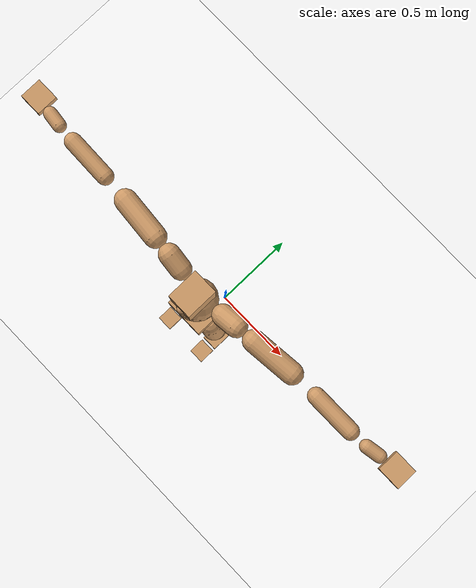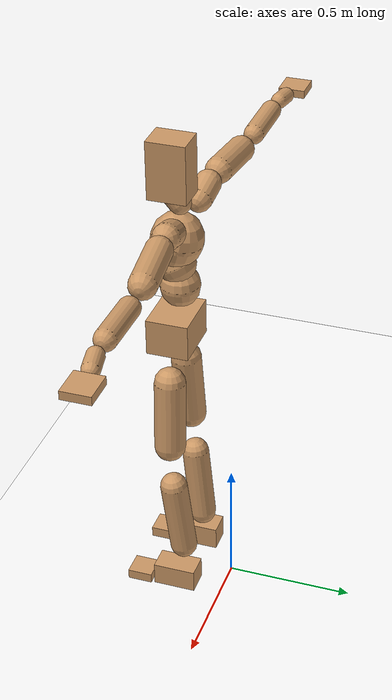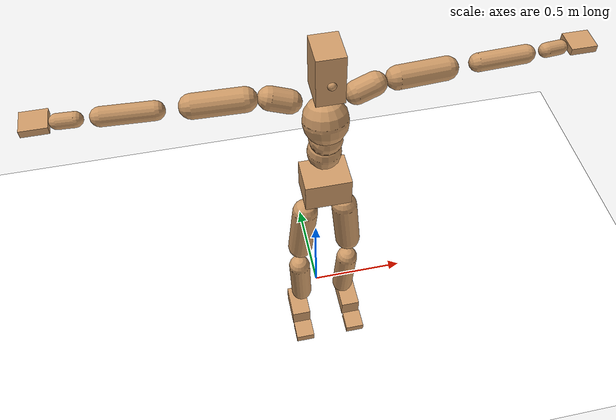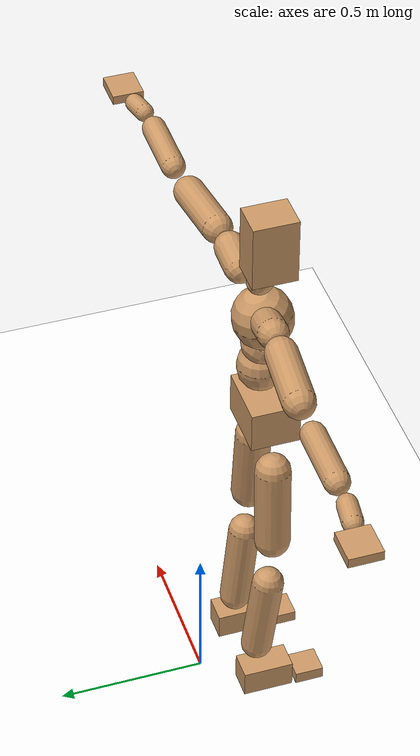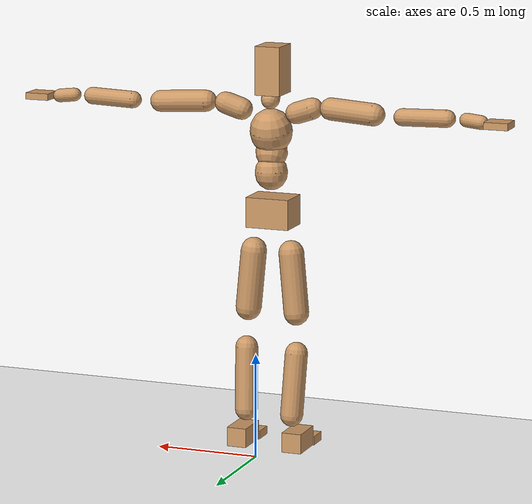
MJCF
<mujoco model="humanoid">
  <option integrator="implicitfast" />

  <visual>
    <global offwidth="1280" offheight="960" />
    <headlight active="1" ambient="0.34 0.34 0.34" diffuse="0.5 0.5 0.5" />
  </visual>

  <default>
    <joint damping="2" stiffness="2" armature="0.01" limited="true" solimplimit="0 .99 .01" />
    <geom condim="1" friction="0.7 0.005 0.0001" solimp=".99 .99 .003" solref="0.015 1" margin="0.001" rgba="0.8 0.6 .4 1" />
    <default class="smplcontact">
      <geom condim="3" friction="1. 0.005 0.0001" solref="0.015 1" solimp="0.98 0.98 0.001" priority="1" />
    </default>
    <default class="stiff_medium">
      <joint stiffness="10" />
    </default>
    <default class="stiff_medium_higher">
      <joint stiffness="50" />
    </default>
    <default class="stiff_high">
      <joint stiffness="100" />
    </default>
  </default>

  <asset>
    <texture type="skybox" builtin="gradient" rgb1="0.99 0.99 0.99" rgb2="0.608 0.828 0.892" width="100" />
    <texture builtin="flat" height="1278" mark="cross" markrgb="1 1 1" name="texgeom" random="0.01" rgb1="0.8 0.6 0.4" rgb2="0.8 0.6 0.4" type="cube" width="127" />
    <texture name="texplane" type="2d" builtin="checker" markrgb="1 1 1" rgb1="0.756 0.772 0.76" rgb2="0.6 0.6 0.6" width="100" height="100" />
    <material name="MatPlane" reflectance="0.5" texture="texplane" texrepeat="1 1" texuniform="true" />
    <material name="geom" texture="texgeom" texuniform="true" />
  </asset>

  <worldbody>
    <light name="tracking_light" pos="0 0 7" dir="0 0 -1" directional="true" cutoff="100" exponent="1" diffuse="1 1 1" specular="0.1 0.1 0.1" mode="trackcom" />
    <camera name="back" pos="0 3 2.4" xyaxes="-1 0 0 0 -1 2" mode="trackcom" />
    <camera name="side" pos="-3 0 2.4" xyaxes="0 -1 0 1 0 2" mode="trackcom" />
    <camera name="front_side" pos="-2.8 -2.8 0.8" xyaxes="0.5 -0.5 0 0.1 0.1 1" mode="trackcom" />
    <geom condim="3" name="floor" pos="0 0 0" rgba="1 1 1 1" size="100 100 .2" type="plane" material="MatPlane" />
    <body name="Pelvis" pos="-0.0018 -0.2233 1.16548" euler="90 0 0">
      <site name="Pelvis" size="0.01" />
      <freejoint name="Pelvis" />
      <geom type="box" pos="-0.0000 -0.0121 -0.0055" size="0.1069 0.0722 0.083" quat="1.0000 0.0000 0.0000 0.0000" density="3165.830099" name="Pelvis" />
      <body name="L_Hip" pos="0.086875 -0.11425 -0.0085">
        <joint name="L_Hip_x" type="hinge" pos="0 0 0" axis="1 0 0" stiffness="14.589841836734694" range="-160.0 22.92" class="stiff_medium" damping="24.10689143795971" armature="0.017703099984975993"/>
        <joint name="L_Hip_y" type="hinge" pos="0 0 0" axis="0 1 0" stiffness="14.527612551020406" range="-70.0 70.0" class="stiff_medium" damping="14.262213477061751" armature="0.014001662871370732"/>
        <joint name="L_Hip_z" type="hinge" pos="0 0 0" axis="0 0 1" stiffness="14.532940204081633" range="-28.65 90.0" class="stiff_medium" damping="16.042326803653772" armature="0.01770847782081624"/>
        <geom type="capsule" density="2040.816327" fromto="0.008625 -0.09375 -0.001125 0.03425 -0.37525 -0.0045" size="0.0615" name="L_Hip" />
        <body name="L_Knee" pos="0.042875 -0.469 -0.005625">
          <joint name="L_Knee_x" type="hinge" pos="0 0 0" axis="1 0 0" range="-5.16 171.89" damping="12.427866473289072" armature="0.0169556873934187" stiffness="2.8466087346938775"/>
          <joint name="L_Knee_y" type="hinge" pos="0 0 0" axis="0 1 0" range="-4.58 6.88" damping="11.131948599716761" armature="0.013404538190087165" stiffness="2.888953489795919"/>
          <joint name="L_Knee_z" type="hinge" pos="0 0 0" axis="0 0 1" range="-6.88 4.58" damping="12.396032357314184" armature="0.016980355499687908" stiffness="2.8279299387755104"/>
          <geom type="capsule" density="1234.567901" fromto="-0.003375 -0.0995 -0.010875 -0.013625 -0.398 -0.04375" size="0.0541" name="L_Knee" />
          <body name="L_Ankle" pos="-0.017 -0.4975 -0.054625">
            <joint name="L_Ankle_x" type="hinge" pos="0 0 0" axis="1 0 0" range="-45.84 45.84" class="stiff_medium" damping="7.851672460897979" armature="0.013699724540716383" stiffness="12.5"/>
            <joint name="L_Ankle_y" type="hinge" pos="0 0 0" axis="0 1 0" range="-74.48 22.92" class="stiff_medium" damping="3.9060654718054306" armature="0.013562086640027183" stiffness="12.5"/>
            <joint name="L_Ankle_z" type="hinge" pos="0 0 0" axis="0 0 1" range="-4.58 4.58" class="stiff_medium" damping="7.548153538649268" armature="0.012661027076227436" stiffness="12.5"/>
            <geom type="box" pos="0.029125 -0.029875 0.03025" size="0.0483 0.0464 0.085" quat="1.0000 0.0000 0.0000 0.0000" density="449.071558" name="L_Ankle" class="smplcontact" />
            <body name="L_Toe" pos="0.033 -0.06975 0.149125">
              <joint name="L_Toe_x" type="hinge" pos="0 0 0" axis="1 0 0" range="-91.67 22.92" armature="0.01213855700177998" damping="2.4635905708721144" stiffness="2.5"/>
              <joint name="L_Toe_y" type="hinge" pos="0 0 0" axis="0 1 0" range="-4.58 4.58" armature="0.011506786054687943" damping="2.398623152423901" stiffness="2.5"/>
              <joint name="L_Toe_z" type="hinge" pos="0 0 0" axis="0 0 1" range="-4.58 4.58" armature="0.01022937920457749" damping="2.261567952171401" stiffness="2.5"/>
              <geom type="box" pos="-0.00375 0.006875 0.031" size="0.0478 0.02 0.0496" quat="1.0000 0.0000 0.0000 0.0000" density="423.206892" name="L_Toe" class="smplcontact" />
            </body>
          </body>
        </body>
      </body>
      <body name="R_Hip" pos="-0.084625 -0.113125 -0.005375">
        <joint name="R_Hip_x" type="hinge" pos="0 0 0" axis="1 0 0" stiffness="14.589841836734694" range="-160.0 22.92" class="stiff_medium" damping="24.10689143795971" armature="0.017703099984975993"/>
        <joint name="R_Hip_y" type="hinge" pos="0 0 0" axis="0 1 0" stiffness="14.527612551020406" range="-70.0 70.0" class="stiff_medium" damping="14.262213477061751" armature="0.014001662871370732"/>
        <joint name="R_Hip_z" type="hinge" pos="0 0 0" axis="0 0 1" stiffness="14.532940204081633" range="-90.0 28.65" class="stiff_medium" damping="16.042326803653772" armature="0.01770847782081624"/>
        <geom type="capsule" density="2040.816327" fromto="-0.009625 -0.095625 -0.00225 -0.03825 -0.382625 -0.008875" size="0.0606" name="R_Hip" />
        <body name="R_Knee" pos="-0.047875 -0.47825 -0.011125">
          <joint name="R_Knee_x" type="hinge" pos="0 0 0" axis="1 0 0" range="-5.16 171.89" damping="12.427866473289072" armature="0.0169556873934187" stiffness="2.8466087346938775"/>
          <joint name="R_Knee_y" type="hinge" pos="0 0 0" axis="0 1 0" range="-6.88 4.58" damping="11.131948599716761" armature="0.013404538190087165" stiffness="2.888953489795919"/>
          <joint name="R_Knee_z" type="hinge" pos="0 0 0" axis="0 0 1" range="-4.58 6.88" damping="12.396032357314184" armature="0.016980355499687908" stiffness="2.8279299387755104"/>
          <geom type="capsule" density="1234.567901" fromto="0.004 -0.099625 -0.010625 0.01575 -0.398375 -0.04225" size="0.0541" name="R_Knee" />
          <body name="R_Ankle" pos="0.01975 -0.498 -0.052875">
            <joint name="R_Ankle_x" type="hinge" pos="0 0 0" axis="1 0 0" range="-45.84 45.84" class="stiff_medium" damping="7.851672460897979" armature="0.013699724540716383" stiffness="12.5"/>
            <joint name="R_Ankle_y" type="hinge" pos="0 0 0" axis="0 1 0" range="-22.92 74.48" class="stiff_medium" damping="3.9060654718054306" armature="0.013562086640027183" stiffness="12.5"/>
            <joint name="R_Ankle_z" type="hinge" pos="0 0 0" axis="0 0 1" range="-4.58 4.58" class="stiff_medium" damping="7.548153538649268" armature="0.012661027076227436" stiffness="12.5"/>
            <geom type="box" pos="-0.0265 -0.02175 0.032" size="0.0483 0.0478 0.0865" quat="1.0000 0.0000 0.0000 0.0000" density="434.700981" name="R_Ankle" class="smplcontact" />
            <body name="R_Toe" pos="-0.03175 -0.060125 0.154125">
              <joint name="R_Toe_x" type="hinge" pos="0 0 0" axis="1 0 0" range="-91.67 22.92" armature="0.01213855700177998" damping="2.4635905708721144" stiffness="2.5"/>
              <joint name="R_Toe_y" type="hinge" pos="0 0 0" axis="0 1 0" range="-4.58 4.58" armature="0.011506786054687943" damping="2.398623152423901" stiffness="2.5"/>
              <joint name="R_Toe_z" type="hinge" pos="0 0 0" axis="0 0 1" range="-4.58 4.58" armature="0.01022937920457749" damping="2.261567952171401" stiffness="2.5"/>
              <geom type="box" pos="0.00525 0.005625 0.028375" size="0.0479 0.0216 0.0493" quat="1.0000 0.0000 0.0000 0.0000" density="407.384095" name="R_Toe" class="smplcontact" />
            </body>
          </body>
        </body>
      </body>
      <body name="Torso" pos="-0.0025 0.109 -0.0267">
        <joint name="Torso_x" type="hinge" pos="0 0 0" axis="1 0 0" range="-25.78 57.3" class="stiff_medium" damping="17.816617842535408" armature="0.012204442824088023" stiffness="11.55979291666667"/>
        <joint name="Torso_y" type="hinge" pos="0 0 0" axis="0 1 0" range="-57.3 57.3" class="stiff_high" damping="32.66648617457636" armature="0.023482633249027433" stiffness="113.6051595744681"/>
        <joint name="Torso_z" type="hinge" pos="0 0 0" axis="0 0 1" range="-34.38 34.38" class="stiff_high" damping="26.532055594632826" armature="0.016035100718302126" stiffness="109.75141136363638"/>
        <geom type="capsule" density="2040.816327" fromto="0.0025 0.0608 0.0005 0.003 0.0743 0.0006" size="0.0769" name="Torso" />
        <body name="Spine" pos="0.0055 0.1352 0.0011">
          <joint name="Spine_x" type="hinge" pos="0 0 0" axis="1 0 0" stiffness="11.652306458333332" range="-25.78 57.3" class="stiff_medium" damping="18.3468499559195" armature="0.0128389232355432"/>
          <joint name="Spine_y" type="hinge" pos="0 0 0" axis="0 1 0" stiffness="12.490174523809525" range="-57.3 57.3" class="stiff_high" damping="13.727844217436889" armature="0.02357524439747789"/>
          <joint name="Spine_z" type="hinge" pos="0 0 0" axis="0 0 1" stiffness="24.140002666666668" range="-34.38 34.38" class="stiff_high" damping="18.060617405335822" armature="0.018767022520783622"/>
          <geom type="capsule" density="2040.816327" fromto="0.0007 0.0238 0.0114 0.0008 0.0291 0.014" size="0.0755" name="Spine" />
          <body name="Chest" pos="0.0015 0.0529 0.0254">
            <joint name="Chest_x" type="hinge" pos="0 0 0" axis="1 0 0" stiffness="12.52777088888889" range="-25.78 57.3" class="stiff_medium" damping="19.3234206846418" armature="0.013246821899117765"/>
            <joint name="Chest_y" type="hinge" pos="0 0 0" axis="0 1 0" stiffness="14.856075609756099" range="-57.3 57.3" class="stiff_high" damping="14.973397185345428" armature="0.023580695741040242"/>
            <joint name="Chest_z" type="hinge" pos="0 0 0" axis="0 0 1" stiffness="24.504841860465113" range="-34.38 34.38" class="stiff_high" damping="18.77641315249792" armature="0.01998208789833815"/>
            <geom type="capsule" density="2040.816327" fromto="-0.0009 0.0682 -0.0173 -0.001 0.0833 -0.0212" size="0.1002" name="Chest" />
            <body name="Neck" pos="-0.0028 0.2139 -0.0429">
              <joint name="Neck_x" type="hinge" pos="0 0 0" axis="1 0 0" range="-28.65 57.3" class="stiff_medium_higher" damping="9.999999999999996" armature="0.009999999999999993" stiffness="50.0"/>
              <joint name="Neck_y" type="hinge" pos="0 0 0" axis="0 1 0" range="-40.11 40.11" class="stiff_medium_higher" damping="10.0" armature="0.01" stiffness="50.0"/>
              <joint name="Neck_z" type="hinge" pos="0 0 0" axis="0 0 1" range="-40.11 40.11" class="stiff_medium_higher" damping="9.999999999999996" armature="0.009999999999999992" stiffness="50.0"/>
              <geom type="capsule" density="1000" fromto="0.001 0.013 0.0103 0.0041 0.052 0.0411" size="0.0436" name="Neck" />
              <body name="Head" pos="0.0052 0.065 0.0513">
                <joint name="Head_x" type="hinge" pos="0 0 0" axis="1 0 0" range="-28.65 57.3" class="stiff_medium_higher" damping="1.9999999999999931" armature="0.009999999999999933" stiffness="50.0"/>
                <joint name="Head_y" type="hinge" pos="0 0 0" axis="0 1 0" range="-40.11 40.11" class="stiff_medium_higher" damping="1.9999999999999998" armature="0.009999999999999998" stiffness="50.0"/>
                <joint name="Head_z" type="hinge" pos="0 0 0" axis="0 0 1" range="-40.11 40.11" class="stiff_medium_higher" damping="1.9999999999999964" armature="0.009999999999999966" stiffness="50.0"/>
                <geom type="box" pos="-0.0042 0.0876 -0.0116" size="0.0606 0.1154 0.076" quat="1.0000 0.0000 0.0000 0.0000" density="1018.069894" name="Head" />
                <geom type="capsule" name="nose" size="0.02 0.01" pos="0 0.07 0.05" quat="1 0 0 0" mass="0" contype="0" conaffinity="0" />
              </body>
            </body>
            <body name="L_Thorax" pos="0.11032 0.17038 -0.04774">
              <joint name="L_Thorax_x" type="hinge" pos="0 0 0" axis="1 0 0" range="-10.89 4.58" class="stiff_medium_higher" damping="36.24085805879014" armature="0.018856138634744554" stiffness="87.06712295918368"/>
              <joint name="L_Thorax_y" type="hinge" pos="0 0 0" axis="0 1 0" range="-28.65 17.19" class="stiff_medium_higher" damping="40.96620891880994" armature="0.023898132129905852" stiffness="87.78041020408163"/>
              <joint name="L_Thorax_z" type="hinge" pos="0 0 0" axis="0 0 1" range="-31.51 40.11" class="stiff_medium_higher" damping="40.96835729355361" armature="0.023902786052476355" stiffness="87.77252448979593"/>
              <geom type="capsule" density="1000" fromto="0.02548 0.00854 -0.00252 0.10192 0.03416 -0.00994" size="0.0521" name="L_Thorax" />
              <body name="L_Shoulder" pos="0.1274 0.0427 -0.01246">
                <joint name="L_Shoulder_x" type="hinge" pos="0 0 0" axis="1 0 0" range="-97.4 97.4" class="stiff_medium" damping="10.216467793124725" armature="0.016750975720821175" stiffness="17.30848"/>
                <joint name="L_Shoulder_y" type="hinge" pos="0 0 0" axis="0 1 0" range="-108.86 80.21" class="stiff_medium" damping="12.210584630805666" armature="0.023662310849895674" stiffness="17.503030918367347"/>
                <joint name="L_Shoulder_z" type="hinge" pos="0 0 0" axis="0 0 1" range="-97.4 85.94" class="stiff_medium" damping="12.207996623471665" armature="0.02366780094775564" stiffness="17.491553877551024"/>
                <geom type="capsule" density="1000" fromto="0.07266 -0.00364 -0.0077 0.29078 -0.01428 -0.0308" size="0.0517" name="L_Shoulder" />
                <body name="L_Elbow" pos="0.36344 -0.01792 -0.0385">
                  <joint name="L_Elbow_x" type="hinge" pos="0 0 0" axis="1 0 0" range="-17.19 4.58" damping="7.586581525572711" armature="0.01362034881744679" stiffness="3.380601775510204"/>
                  <joint name="L_Elbow_y" type="hinge" pos="0 0 0" axis="0 1 0" range="-180.0 17.19" damping="9.75867105261812" armature="0.022523674987219206" stiffness="3.382455510204082"/>
                  <joint name="L_Elbow_z" type="hinge" pos="0 0 0" axis="0 0 1" range="-100.84 4.58" damping="9.76033597904074" armature="0.022552387617329545" stiffness="3.3793019183673465"/>
                  <geom type="capsule" density="1000" fromto="0.06972 0.00252 -0.00028 0.27916 0.01008 -0.00126" size="0.0405" name="L_Elbow" />
                  <body name="L_Wrist" pos="0.34888 0.0126 -0.00168">
                    <joint name="L_Wrist_x" type="hinge" pos="0 0 0" axis="1 0 0" range="-180.0 22.92" armature="0.013168550139583885" damping="2.8121939405269574" stiffness="3.002773530612245"/>
                    <joint name="L_Wrist_y" type="hinge" pos="0 0 0" axis="0 1 0" range="-17.19 17.19" armature="0.019145926143816158" damping="3.4076565933193814" stiffness="3.0325311428571426"/>
                    <joint name="L_Wrist_z" type="hinge" pos="0 0 0" axis="0 0 1" range="-22.92 22.92" armature="0.01946864082917072" damping="3.4294485001747024" stiffness="3.0205285306122445"/>
                    <geom type="capsule" density="1000" fromto="0.02352 -0.00224 -0.0042 0.09408 -0.0091 -0.0168" size="0.0318" name="L_Wrist" class="smplcontact" />
                    <body name="L_Hand" pos="0.1176 -0.01148 -0.02086">
                      <joint name="L_Hand_x" type="hinge" pos="0 0 0" axis="1 0 0" range="-17.19 17.19" armature="0.010418235140997148" damping="2.415411285673395" stiffness="2.8000000000000003"/>
                      <joint name="L_Hand_y" type="hinge" pos="0 0 0" axis="0 1 0" range="-51.57 51.57" armature="0.015057977012994713" damping="2.9038710589964287" stiffness="2.8000000000000003"/>
                      <joint name="L_Hand_z" type="hinge" pos="0 0 0" axis="0 0 1" range="-91.67 91.67" armature="0.016294763602145573" damping="3.0207726854567394" stiffness="2.8000000000000003"/>
                      <geom type="box" pos="0.06902 0.0014 -0.00812" size="0.0585 0.0158 0.0538" quat="1.0000 0.0000 0.0000 0.0000" density="400.552564" name="L_Hand" class="smplcontact" />
                    </body>
                  </body>
                </body>
              </body>
            </body>
            <body name="R_Thorax" pos="-0.11452 0.16632 -0.05404">
              <joint name="R_Thorax_x" type="hinge" pos="0 0 0" axis="1 0 0" range="-10.89 4.58" class="stiff_medium_higher" damping="36.24085805879014" armature="0.018856138634744554" stiffness="87.06712295918368"/>
              <joint name="R_Thorax_y" type="hinge" pos="0 0 0" axis="0 1 0" range="-17.19 28.65" class="stiff_medium_higher" damping="40.96620891880994" armature="0.023898132129905852" stiffness="87.78041020408163"/>
              <joint name="R_Thorax_z" type="hinge" pos="0 0 0" axis="0 0 1" range="-40.11 31.51" class="stiff_medium_higher" damping="40.96835729355361" armature="0.023902786052476355" stiffness="87.77252448979593"/>
              <geom type="capsule" density="1000" fromto="-0.02688 0.0091 -0.00252 -0.10752 0.0364 -0.01022" size="0.0511" name="R_Thorax" />
              <body name="R_Shoulder" pos="-0.1344 0.04564 -0.01274">
                <joint name="R_Shoulder_x" type="hinge" pos="0 0 0" axis="1 0 0" range="-97.4 97.4" class="stiff_medium" damping="10.216467793124725" armature="0.016750975720821175" stiffness="17.30848"/>
                <joint name="R_Shoulder_y" type="hinge" pos="0 0 0" axis="0 1 0" range="-80.21 108.86" class="stiff_medium" damping="12.210584630805666" armature="0.023662310849895674" stiffness="17.503030918367347"/>
                <joint name="R_Shoulder_z" type="hinge" pos="0 0 0" axis="0 0 1" range="-85.94 97.4" class="stiff_medium" damping="12.207996623471665" armature="0.02366780094775564" stiffness="17.491553877551024"/>
                <geom type="capsule" density="1000" fromto="-0.07098 -0.00378 -0.00602 -0.2842 -0.01498 -0.02394" size="0.0531" name="R_Shoulder" />
                <body name="R_Elbow" pos="-0.35518 -0.01862 -0.02996">
                  <joint name="R_Elbow_x" type="hinge" pos="0 0 0" axis="1 0 0" range="-17.19 4.58" damping="7.586581525572711" armature="0.01362034881744679" stiffness="3.380601775510204"/>
                  <joint name="R_Elbow_y" type="hinge" pos="0 0 0" axis="0 1 0" range="-17.19 180.0" damping="9.75867105261812" armature="0.022523674987219206" stiffness="3.382455510204082"/>
                  <joint name="R_Elbow_z" type="hinge" pos="0 0 0" axis="0 0 1" range="-4.58 100.84" damping="9.76033597904074" armature="0.022552387617329545" stiffness="3.3793019183673465"/>
                  <geom type="capsule" density="1000" fromto="-0.07154 0.00224 -0.00154 -0.28588 0.00868 -0.00616" size="0.0408" name="R_Elbow" />
                  <body name="R_Wrist" pos="-0.35742 0.01092 -0.00784">
                    <joint name="R_Wrist_x" type="hinge" pos="0 0 0" axis="1 0 0" range="-180.0 22.92" armature="0.013168550139583885" damping="2.8121939405269574" stiffness="3.002773530612245"/>
                    <joint name="R_Wrist_y" type="hinge" pos="0 0 0" axis="0 1 0" range="-17.19 17.19" armature="0.019145926143816158" damping="3.4076565933193814" stiffness="3.0325311428571426"/>
                    <joint name="R_Wrist_z" type="hinge" pos="0 0 0" axis="0 0 1" range="-22.92 22.92" armature="0.01946864082917072" damping="3.4294485001747024" stiffness="3.0205285306122445"/>
                    <geom type="capsule" density="1000" fromto="-0.02366 -0.00168 -0.00294 -0.09478 -0.00686 -0.01162" size="0.0326" name="R_Wrist" class="smplcontact" />
                    <body name="R_Hand" pos="-0.11844 -0.00854 -0.01442">
                      <joint name="R_Hand_x" type="hinge" pos="0 0 0" axis="1 0 0" range="-17.19 17.19" armature="0.010418235140997148" damping="2.415411285673395" stiffness="2.8000000000000003"/>
                      <joint name="R_Hand_y" type="hinge" pos="0 0 0" axis="0 1 0" range="-51.57 51.57" armature="0.015057977012994713" damping="2.9038710589964287" stiffness="2.8000000000000003"/>
                      <joint name="R_Hand_z" type="hinge" pos="0 0 0" axis="0 0 1" range="-91.67 91.67" armature="0.016294763602145573" damping="3.0207726854567394" stiffness="2.8000000000000003"/>
                      <geom type="box" pos="-0.06468 -0.00126 -0.01106" size="0.0569 0.0164 0.0546" quat="1.0000 0.0000 0.0000 0.0000" density="403.679611" name="R_Hand" class="smplcontact" />
                    </body>
                  </body>
                </body>
              </body>
            </body>
          </body>
        </body>
      </body>
    </body>
  </worldbody>
  <actuator>
    <general name="L_Hip_x" joint="L_Hip_x" biastype="affine" gainprm="419.21001901187765" biasprm="-314.15541988928595 -262.6171530612245 -3.214252191727961" ctrllimited="true" ctrlrange="-1 1" forcerange="-525.234306122449 525.234306122449" />
    <general name="L_Hip_y" joint="L_Hip_y" biastype="affine" gainprm="319.47888605139207" biasprm="0.0 -261.4970259183673 -2.8524426954123503" ctrllimited="true" ctrlrange="-1 1" forcerange="-522.9940518367346 522.9940518367346" />
    <general name="L_Hip_z" joint="L_Hip_z" biastype="affine" gainprm="270.857650054052" biasprm="140.0515535677715 -261.5929236734694 -3.2084653607307545" ctrllimited="true" ctrlrange="-1 1" forcerange="-523.1858473469388 523.1858473469388" />
    <general name="L_Knee_x" joint="L_Knee_x" biastype="affine" gainprm="395.8344512323349" biasprm="372.7618077038531 -256.194786122449 -3.106966618322268" ctrllimited="true" ctrlrange="-1 1" forcerange="-512.389572244898 512.389572244898" />
    <general name="L_Knee_y" joint="L_Knee_y" biastype="affine" gainprm="26.002496647202126" biasprm="5.218651159560636 -260.0058140816327 -2.7829871499291903" ctrllimited="true" ctrlrange="-1 1" forcerange="-520.0116281632654 520.0116281632654" />
    <general name="L_Knee_z" joint="L_Knee_z" biastype="affine" gainprm="25.45324423230062" biasprm="-5.108417254301171 -254.51369448979594 -3.099008089328546" ctrllimited="true" ctrlrange="-1 1" forcerange="-509.0273889795919 509.0273889795919" />
    <general name="L_Ankle_x" joint="L_Ankle_x" biastype="affine" gainprm="90.00662952534759" biasprm="0.0 -112.5 -2.6172241536326597" ctrllimited="true" ctrlrange="-1 1" forcerange="-225.0 225.0" />
    <general name="L_Ankle_y" joint="L_Ankle_y" biastype="affine" gainprm="95.62222639363935" biasprm="-50.61891163096555 -112.5 -2.604043647870287" ctrllimited="true" ctrlrange="-1 1" forcerange="-225.0 225.0" />
    <general name="L_Ankle_z" joint="L_Ankle_z" biastype="affine" gainprm="8.992808970900782" biasprm="0.0 -112.5 -2.516051179549756" ctrllimited="true" ctrlrange="-1 1" forcerange="-225.0 225.0" />
    <general name="L_Toe_x" joint="L_Toe_x" biastype="affine" gainprm="89.99877554371359" biasprm="-53.996123733574564 -90.0 -0.9854362283488458" ctrllimited="true" ctrlrange="-1 1" forcerange="-180.0 180.0" />
    <general name="L_Toe_y" joint="L_Toe_y" biastype="affine" gainprm="7.194247176720626" biasprm="0.0 -90.0 -0.9594492609695604" ctrllimited="true" ctrlrange="-1 1" forcerange="-180.0 180.0" />
    <general name="L_Toe_z" joint="L_Toe_z" biastype="affine" gainprm="7.194247176720626" biasprm="0.0 -90.0 -0.9046271808685605" ctrllimited="true" ctrlrange="-1 1" forcerange="-180.0 180.0" />
    <general name="R_Hip_x" joint="R_Hip_x" biastype="affine" gainprm="419.21001901187765" biasprm="-314.15541988928595 -262.6171530612245 -3.214252191727961" ctrllimited="true" ctrlrange="-1 1" forcerange="-525.234306122449 525.234306122449" />
    <general name="R_Hip_y" joint="R_Hip_y" biastype="affine" gainprm="319.47888605139207" biasprm="0.0 -261.4970259183673 -2.8524426954123503" ctrllimited="true" ctrlrange="-1 1" forcerange="-522.9940518367346 522.9940518367346" />
    <general name="R_Hip_z" joint="R_Hip_z" biastype="affine" gainprm="270.857650054052" biasprm="-140.0515535677715 -261.5929236734694 -3.2084653607307545" ctrllimited="true" ctrlrange="-1 1" forcerange="-523.1858473469388 523.1858473469388" />
    <general name="R_Knee_x" joint="R_Knee_x" biastype="affine" gainprm="395.8344512323349" biasprm="372.7618077038531 -256.194786122449 -3.106966618322268" ctrllimited="true" ctrlrange="-1 1" forcerange="-512.389572244898 512.389572244898" />
    <general name="R_Knee_y" joint="R_Knee_y" biastype="affine" gainprm="26.002496647202126" biasprm="-5.218651159560636 -260.0058140816327 -2.7829871499291903" ctrllimited="true" ctrlrange="-1 1" forcerange="-520.0116281632654 520.0116281632654" />
    <general name="R_Knee_z" joint="R_Knee_z" biastype="affine" gainprm="25.45324423230062" biasprm="5.108417254301171 -254.51369448979594 -3.099008089328546" ctrllimited="true" ctrlrange="-1 1" forcerange="-509.0273889795919 509.0273889795919" />
    <general name="R_Ankle_x" joint="R_Ankle_x" biastype="affine" gainprm="90.00662952534759" biasprm="0.0 -112.5 -2.6172241536326597" ctrllimited="true" ctrlrange="-1 1" forcerange="-225.0 225.0" />
    <general name="R_Ankle_y" joint="R_Ankle_y" biastype="affine" gainprm="95.62222639363935" biasprm="50.61891163096555 -112.5 -2.604043647870287" ctrllimited="true" ctrlrange="-1 1" forcerange="-225.0 225.0" />
    <general name="R_Ankle_z" joint="R_Ankle_z" biastype="affine" gainprm="8.992808970900782" biasprm="0.0 -112.5 -2.516051179549756" ctrllimited="true" ctrlrange="-1 1" forcerange="-225.0 225.0" />
    <general name="R_Toe_x" joint="R_Toe_x" biastype="affine" gainprm="89.99877554371359" biasprm="-53.996123733574564 -90.0 -0.9854362283488458" ctrllimited="true" ctrlrange="-1 1" forcerange="-180.0 180.0" />
    <general name="R_Toe_y" joint="R_Toe_y" biastype="affine" gainprm="7.194247176720626" biasprm="0.0 -90.0 -0.9594492609695604" ctrllimited="true" ctrlrange="-1 1" forcerange="-180.0 180.0" />
    <general name="R_Toe_z" joint="R_Toe_z" biastype="affine" gainprm="7.194247176720626" biasprm="0.0 -90.0 -0.9046271808685605" ctrllimited="true" ctrlrange="-1 1" forcerange="-180.0 180.0" />
    <general name="Torso_x" joint="Torso_x" biastype="affine" gainprm="201.14310764492842" biasprm="76.31235860577928 -277.43503000000004 -4.751098091342776" ctrllimited="true" ctrlrange="-1 1" forcerange="-416.1525450000001 416.1525450000001" />
    <general name="Torso_y" joint="Torso_y" biastype="affine" gainprm="272.67246693299046" biasprm="0.0 -272.65238297872344 -6.533297234915272" ctrllimited="true" ctrlrange="-1 1" forcerange="-408.9785744680852 408.9785744680852" />
    <general name="Torso_z" joint="Torso_z" biastype="affine" gainprm="158.05367395985348" biasprm="0.0 -263.4033872727273 -5.306411118926565" ctrllimited="true" ctrlrange="-1 1" forcerange="-395.10508090909093 395.10508090909093" />
    <general name="Spine_x" joint="Spine_x" biastype="affine" gainprm="202.75286496534218" biasprm="76.9230898375973 -279.655355 -4.892493321578533" ctrllimited="true" ctrlrange="-1 1" forcerange="-419.4830325 419.4830325" />
    <general name="Spine_y" joint="Spine_y" biastype="affine" gainprm="299.7862696190556" biasprm="0.0 -299.7641885714286 -6.8639221087184445" ctrllimited="true" ctrlrange="-1 1" forcerange="-449.6462828571429 449.6462828571429" />
    <general name="Spine_z" joint="Spine_z" biastype="affine" gainprm="173.82082214076556" biasprm="0.0 -289.680032 -6.020205801778608" ctrllimited="true" ctrlrange="-1 1" forcerange="-434.520048 434.520048" />
    <general name="Chest_x" joint="Chest_x" biastype="affine" gainprm="217.98615136277013" biasprm="82.70249748380492 -300.6665013333334 -5.152912182571146" ctrllimited="true" ctrlrange="-1 1" forcerange="-450.999752 450.999752" />
    <general name="Chest_y" joint="Chest_y" biastype="affine" gainprm="356.57207829543177" biasprm="0.0 -356.5458146341464 -7.486698592672714" ctrllimited="true" ctrlrange="-1 1" forcerange="-534.8187219512196 534.8187219512196" />
    <general name="Chest_z" joint="Chest_z" biastype="affine" gainprm="176.44785783296902" biasprm="0.0 -294.0581023255814 -6.258804384165973" ctrllimited="true" ctrlrange="-1 1" forcerange="-441.08715348837205 441.08715348837205" />
    <general name="Neck_x" joint="Neck_x" biastype="affine" gainprm="27.00198885760427" biasprm="9.000662952534757 -36.0 -0.7999999999999997" ctrllimited="true" ctrlrange="-1 1" forcerange="-72.0 72.0" />
    <general name="Neck_y" joint="Neck_y" biastype="affine" gainprm="25.20185626709732" biasprm="0.0 -36.0 -0.8" ctrllimited="true" ctrlrange="-1 1" forcerange="-72.0 72.0" />
    <general name="Neck_z" joint="Neck_z" biastype="affine" gainprm="25.20185626709732" biasprm="0.0 -36.0 -0.7999999999999997" ctrllimited="true" ctrlrange="-1 1" forcerange="-72.0 72.0" />
    <general name="Head_x" joint="Head_x" biastype="affine" gainprm="18.001325905069514" biasprm="6.000441968356505 -24.0 -0.7999999999999973" ctrllimited="true" ctrlrange="-1 1" forcerange="-48.0 48.0" />
    <general name="Head_y" joint="Head_y" biastype="affine" gainprm="16.801237511398213" biasprm="0.0 -24.0 -0.7999999999999999" ctrllimited="true" ctrlrange="-1 1" forcerange="-48.0 48.0" />
    <general name="Head_z" joint="Head_z" biastype="affine" gainprm="16.801237511398213" biasprm="0.0 -24.0 -0.7999999999999986" ctrllimited="true" ctrlrange="-1 1" forcerange="-48.0 48.0" />
    <general name="L_Thorax_x" joint="L_Thorax_x" biastype="affine" gainprm="28.21000227853141" biasprm="-11.506471517616887 -208.96109510204082 -2.899268644703211" ctrllimited="true" ctrlrange="-1 1" forcerange="-417.92219020408163 417.92219020408163" />
    <general name="L_Thorax_y" joint="L_Thorax_y" biastype="affine" gainprm="84.27540118209936" biasprm="-21.06885029552484 -210.6729844897959 -3.277296713504795" ctrllimited="true" ctrlrange="-1 1" forcerange="-421.3459689795918 421.3459689795918" />
    <general name="L_Thorax_z" joint="L_Thorax_z" biastype="affine" gainprm="131.65929338702185" biasprm="15.809409705785923 -210.6540587755102 -3.2774685834842887" ctrllimited="true" ctrlrange="-1 1" forcerange="-421.3081175510204 421.3081175510204" />
    <general name="L_Shoulder_x" joint="L_Shoulder_x" biastype="affine" gainprm="141.23310021032776" biasprm="0.0 -83.080704 -2.7243914114999264" ctrllimited="true" ctrlrange="-1 1" forcerange="-166.161408 166.161408" />
    <general name="L_Shoulder_y" joint="L_Shoulder_y" biastype="affine" gainprm="138.61955280584408" biasprm="-21.005184259202586 -84.01454840816328 -3.256155901548178" ctrllimited="true" ctrlrange="-1 1" forcerange="-168.02909681632656 168.02909681632656" />
    <general name="L_Shoulder_z" joint="L_Shoulder_z" biastype="affine" gainprm="134.33037540273168" biasprm="-8.396564318290107 -83.9594586122449 -3.2554657662591104" ctrllimited="true" ctrlrange="-1 1" forcerange="-167.9189172244898 167.9189172244898" />
    <general name="L_Elbow_x" joint="L_Elbow_x" biastype="affine" gainprm="23.120771250680953" biasprm="-13.39241733904855 -121.70166391836734 -1.2138530440916337" ctrllimited="true" ctrlrange="-1 1" forcerange="-243.4033278367347 243.4033278367347" />
    <general name="L_Elbow_y" joint="L_Elbow_y" biastype="affine" gainprm="209.53995807470082" biasprm="-173.0067476755517 -121.76839836734695 -1.561387368418899" ctrllimited="true" ctrlrange="-1 1" forcerange="-243.5367967346939 243.5367967346939" />
    <general name="L_Elbow_z" joint="L_Elbow_z" biastype="affine" gainprm="111.91798423395207" biasprm="-102.19337091975173 -121.65486906122447 -1.5616537566465185" ctrllimited="true" ctrlrange="-1 1" forcerange="-243.30973812244895 243.30973812244895" />
    <general name="L_Wrist_x" joint="L_Wrist_x" biastype="affine" gainprm="31.904067455407095" biasprm="-24.696880129584795 -18.01664118367347 -1.124877576210783" ctrllimited="true" ctrlrange="-1 1" forcerange="-36.03328236734694 36.03328236734694" />
    <general name="L_Wrist_y" joint="L_Wrist_y" biastype="affine" gainprm="5.458958141984436" biasprm="0.0 -18.195186857142858 -1.3630626373277526" ctrllimited="true" ctrlrange="-1 1" forcerange="-36.390373714285715 36.390373714285715" />
    <general name="L_Wrist_z" joint="L_Wrist_z" biastype="affine" gainprm="7.249802464681568" biasprm="0.0 -18.123171183673467 -1.371779400069881" ctrllimited="true" ctrlrange="-1 1" forcerange="-36.246342367346934 36.246342367346934" />
    <general name="L_Hand_x" joint="L_Hand_x" biastype="affine" gainprm="5.040371253419465" biasprm="0.0 -16.8 -0.966164514269358" ctrllimited="true" ctrlrange="-1 1" forcerange="-33.6 33.6" />
    <general name="L_Hand_y" joint="L_Hand_y" biastype="affine" gainprm="15.121113760258392" biasprm="0.0 -16.8 -1.1615484235985716" ctrllimited="true" ctrlrange="-1 1" forcerange="-33.6 33.6" />
    <general name="L_Hand_z" joint="L_Hand_z" biastype="affine" gainprm="26.879047865093792" biasprm="0.0 -16.8 -1.2083090741826958" ctrllimited="true" ctrlrange="-1 1" forcerange="-33.6 33.6" />
    <general name="R_Thorax_x" joint="R_Thorax_x" biastype="affine" gainprm="28.21000227853141" biasprm="-11.506471517616887 -208.96109510204082 -2.899268644703211" ctrllimited="true" ctrlrange="-1 1" forcerange="-417.92219020408163 417.92219020408163" />
    <general name="R_Thorax_y" joint="R_Thorax_y" biastype="affine" gainprm="84.27540118209936" biasprm="21.068850295524825 -210.6729844897959 -3.277296713504795" ctrllimited="true" ctrlrange="-1 1" forcerange="-421.3459689795918 421.3459689795918" />
    <general name="R_Thorax_z" joint="R_Thorax_z" biastype="affine" gainprm="131.65929338702185" biasprm="-15.809409705785923 -210.6540587755102 -3.2774685834842887" ctrllimited="true" ctrlrange="-1 1" forcerange="-421.3081175510204 421.3081175510204" />
    <general name="R_Shoulder_x" joint="R_Shoulder_x" biastype="affine" gainprm="141.23310021032776" biasprm="0.0 -83.080704 -2.7243914114999264" ctrllimited="true" ctrlrange="-1 1" forcerange="-166.161408 166.161408" />
    <general name="R_Shoulder_y" joint="R_Shoulder_y" biastype="affine" gainprm="138.61955280584408" biasprm="21.005184259202586 -84.01454840816328 -3.256155901548178" ctrllimited="true" ctrlrange="-1 1" forcerange="-168.02909681632656 168.02909681632656" />
    <general name="R_Shoulder_z" joint="R_Shoulder_z" biastype="affine" gainprm="134.33037540273168" biasprm="8.396564318290089 -83.9594586122449 -3.2554657662591104" ctrllimited="true" ctrlrange="-1 1" forcerange="-167.9189172244898 167.9189172244898" />
    <general name="R_Elbow_x" joint="R_Elbow_x" biastype="affine" gainprm="23.120771250680953" biasprm="-13.39241733904855 -121.70166391836734 -1.2138530440916337" ctrllimited="true" ctrlrange="-1 1" forcerange="-243.4033278367347 243.4033278367347" />
    <general name="R_Elbow_y" joint="R_Elbow_y" biastype="affine" gainprm="209.53995807470082" biasprm="173.0067476755517 -121.76839836734695 -1.561387368418899" ctrllimited="true" ctrlrange="-1 1" forcerange="-243.5367967346939 243.5367967346939" />
    <general name="R_Elbow_z" joint="R_Elbow_z" biastype="affine" gainprm="111.91798423395207" biasprm="102.19337091975173 -121.65486906122447 -1.5616537566465185" ctrllimited="true" ctrlrange="-1 1" forcerange="-243.30973812244895 243.30973812244895" />
    <general name="R_Wrist_x" joint="R_Wrist_x" biastype="affine" gainprm="31.904067455407095" biasprm="-24.696880129584795 -18.01664118367347 -1.124877576210783" ctrllimited="true" ctrlrange="-1 1" forcerange="-36.03328236734694 36.03328236734694" />
    <general name="R_Wrist_y" joint="R_Wrist_y" biastype="affine" gainprm="5.458958141984436" biasprm="0.0 -18.195186857142858 -1.3630626373277526" ctrllimited="true" ctrlrange="-1 1" forcerange="-36.390373714285715 36.390373714285715" />
    <general name="R_Wrist_z" joint="R_Wrist_z" biastype="affine" gainprm="7.249802464681568" biasprm="0.0 -18.123171183673467 -1.371779400069881" ctrllimited="true" ctrlrange="-1 1" forcerange="-36.246342367346934 36.246342367346934" />
    <general name="R_Hand_x" joint="R_Hand_x" biastype="affine" gainprm="5.040371253419465" biasprm="0.0 -16.8 -0.966164514269358" ctrllimited="true" ctrlrange="-1 1" forcerange="-33.6 33.6" />
    <general name="R_Hand_y" joint="R_Hand_y" biastype="affine" gainprm="15.121113760258392" biasprm="0.0 -16.8 -1.1615484235985716" ctrllimited="true" ctrlrange="-1 1" forcerange="-33.6 33.6" />
    <general name="R_Hand_z" joint="R_Hand_z" biastype="affine" gainprm="26.879047865093792" biasprm="0.0 -16.8 -1.2083090741826958" ctrllimited="true" ctrlrange="-1 1" forcerange="-33.6 33.6" />
  </actuator>
  <contact>
    <exclude body1="Torso" body2="Chest" />
    <exclude body1="Head" body2="Chest" />
    <exclude body1="R_Knee" body2="R_Toe" />
    <exclude body1="R_Knee" body2="L_Ankle" />
    <exclude body1="R_Knee" body2="L_Toe" />
    <exclude body1="L_Knee" body2="L_Toe" />
    <exclude body1="L_Knee" body2="R_Ankle" />
    <exclude body1="L_Knee" body2="R_Toe" />
    <exclude body1="L_Shoulder" body2="Chest" />
    <exclude body1="R_Shoulder" body2="Chest" />
  </contact>
  <sensor>
    <framelinvel name="sensor_Pelvis_framelinvel" objtype="xbody" objname="Pelvis" />
    <framelinvel name="sensor_L_Hip_framelinvel" objtype="xbody" objname="L_Hip" />
    <framelinvel name="sensor_L_Knee_framelinvel" objtype="xbody" objname="L_Knee" />
    <framelinvel name="sensor_L_Ankle_framelinvel" objtype="xbody" objname="L_Ankle" />
    <framelinvel name="sensor_L_Toe_framelinvel" objtype="xbody" objname="L_Toe" />
    <framelinvel name="sensor_R_Hip_framelinvel" objtype="xbody" objname="R_Hip" />
    <framelinvel name="sensor_R_Knee_framelinvel" objtype="xbody" objname="R_Knee" />
    <framelinvel name="sensor_R_Ankle_framelinvel" objtype="xbody" objname="R_Ankle" />
    <framelinvel name="sensor_R_Toe_framelinvel" objtype="xbody" objname="R_Toe" />
    <framelinvel name="sensor_Torso_framelinvel" objtype="xbody" objname="Torso" />
    <framelinvel name="sensor_Spine_framelinvel" objtype="xbody" objname="Spine" />
    <framelinvel name="sensor_Chest_framelinvel" objtype="xbody" objname="Chest" />
    <framelinvel name="sensor_Neck_framelinvel" objtype="xbody" objname="Neck" />
    <framelinvel name="sensor_Head_framelinvel" objtype="xbody" objname="Head" />
    <framelinvel name="sensor_L_Thorax_framelinvel" objtype="xbody" objname="L_Thorax" />
    <framelinvel name="sensor_L_Shoulder_framelinvel" objtype="xbody" objname="L_Shoulder" />
    <framelinvel name="sensor_L_Elbow_framelinvel" objtype="xbody" objname="L_Elbow" />
    <framelinvel name="sensor_L_Wrist_framelinvel" objtype="xbody" objname="L_Wrist" />
    <framelinvel name="sensor_L_Hand_framelinvel" objtype="xbody" objname="L_Hand" />
    <framelinvel name="sensor_R_Thorax_framelinvel" objtype="xbody" objname="R_Thorax" />
    <framelinvel name="sensor_R_Shoulder_framelinvel" objtype="xbody" objname="R_Shoulder" />
    <framelinvel name="sensor_R_Elbow_framelinvel" objtype="xbody" objname="R_Elbow" />
    <framelinvel name="sensor_R_Wrist_framelinvel" objtype="xbody" objname="R_Wrist" />
    <framelinvel name="sensor_R_Hand_framelinvel" objtype="xbody" objname="R_Hand" />
    <frameangvel name="sensor_Pelvis_frameangvel" objtype="xbody" objname="Pelvis" />
    <frameangvel name="sensor_L_Hip_frameangvel" objtype="xbody" objname="L_Hip" />
    <frameangvel name="sensor_L_Knee_frameangvel" objtype="xbody" objname="L_Knee" />
    <frameangvel name="sensor_L_Ankle_frameangvel" objtype="xbody" objname="L_Ankle" />
    <frameangvel name="sensor_L_Toe_frameangvel" objtype="xbody" objname="L_Toe" />
    <frameangvel name="sensor_R_Hip_frameangvel" objtype="xbody" objname="R_Hip" />
    <frameangvel name="sensor_R_Knee_frameangvel" objtype="xbody" objname="R_Knee" />
    <frameangvel name="sensor_R_Ankle_frameangvel" objtype="xbody" objname="R_Ankle" />
    <frameangvel name="sensor_R_Toe_frameangvel" objtype="xbody" objname="R_Toe" />
    <frameangvel name="sensor_Torso_frameangvel" objtype="xbody" objname="Torso" />
    <frameangvel name="sensor_Spine_frameangvel" objtype="xbody" objname="Spine" />
    <frameangvel name="sensor_Chest_frameangvel" objtype="xbody" objname="Chest" />
    <frameangvel name="sensor_Neck_frameangvel" objtype="xbody" objname="Neck" />
    <frameangvel name="sensor_Head_frameangvel" objtype="xbody" objname="Head" />
    <frameangvel name="sensor_L_Thorax_frameangvel" objtype="xbody" objname="L_Thorax" />
    <frameangvel name="sensor_L_Shoulder_frameangvel" objtype="xbody" objname="L_Shoulder" />
    <frameangvel name="sensor_L_Elbow_frameangvel" objtype="xbody" objname="L_Elbow" />
    <frameangvel name="sensor_L_Wrist_frameangvel" objtype="xbody" objname="L_Wrist" />
    <frameangvel name="sensor_L_Hand_frameangvel" objtype="xbody" objname="L_Hand" />
    <frameangvel name="sensor_R_Thorax_frameangvel" objtype="xbody" objname="R_Thorax" />
    <frameangvel name="sensor_R_Shoulder_frameangvel" objtype="xbody" objname="R_Shoulder" />
    <frameangvel name="sensor_R_Elbow_frameangvel" objtype="xbody" objname="R_Elbow" />
    <frameangvel name="sensor_R_Wrist_frameangvel" objtype="xbody" objname="R_Wrist" />
    <frameangvel name="sensor_R_Hand_frameangvel" objtype="xbody" objname="R_Hand" />
    <subtreelinvel name="Chest_subtreelinvel" body="Chest" />
    <gyro name="Pelvis_gyro" site="Pelvis" />
  </sensor>
</mujoco>
